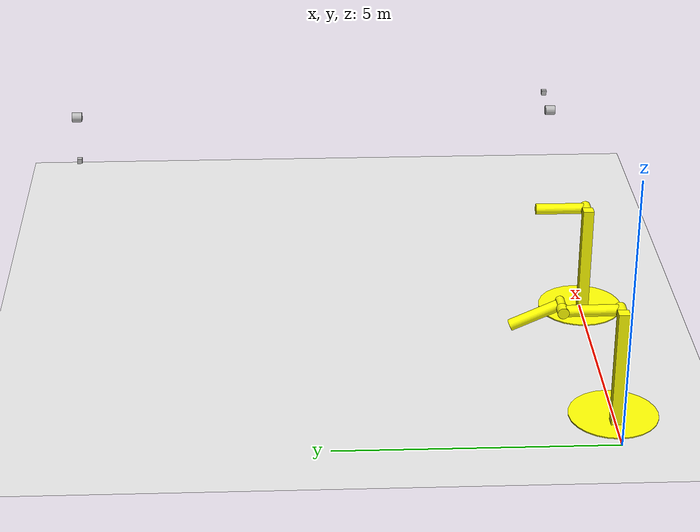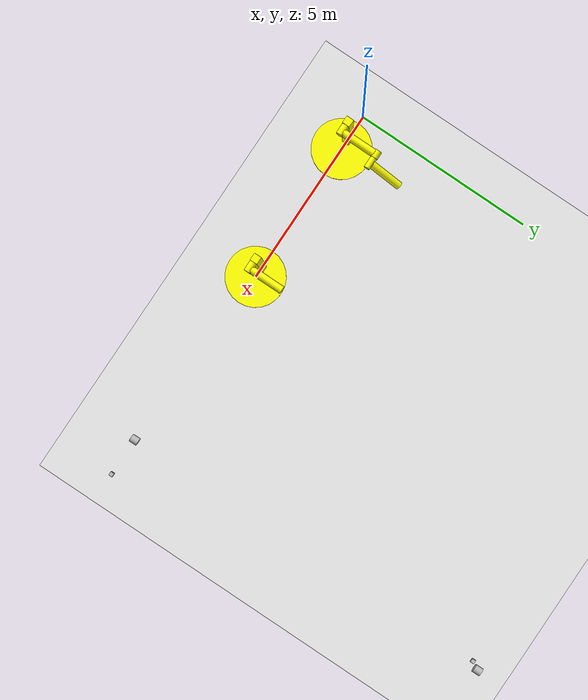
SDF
<?xml version="1.0" ?>
<sdf version="1.6">
  <world name="test_world">
    <model name="ground_plane">
      <static>true</static>
      <link name="link">
        <collision name="collision">
          <geometry>
            <plane>
              <normal>0 0 1</normal>
              <size>100 100</size>
            </plane>
          </geometry>
          <surface>
            <friction>
              <ode>
                <mu>100</mu>
                <mu2>50</mu2>
              </ode>
            </friction>
          </surface>
        </collision>
        <visual name="visual">
          <cast_shadows>false</cast_shadows>
          <geometry>
            <plane>
              <normal>0 0 1</normal>
              <size>100 100</size>
            </plane>
          </geometry>
          <material>
            <ambient>0.9 0.9 0.9 1</ambient>
          </material>
        </visual>
      </link>
    </model>
    <model name="double_pendulum_with_base">
      <pose>1 0 0 0 0 0</pose>
      <link name="base">
        <inertial>
          <mass>100</mass>
        </inertial>
        <visual name="vis_plate_on_ground">
          <pose>0 0 0.01 0 0 0</pose>
          <geometry>
            <cylinder>
              <radius>0.8</radius>
              <length>0.02</length>
            </cylinder>
          </geometry>
          <material>
            <ambient>1 1 0 1</ambient>
          </material>
        </visual>
        <visual name="vis_pole">
          <pose>-0.275 0 1.1 0 0 0</pose>
          <geometry>
            <box>
              <size>0.2 0.2 2.2</size>
            </box>
          </geometry>
          <material>
            <ambient>1 1 0 1</ambient>
          </material>
        </visual>
        <collision name="col_plate_on_ground">
          <pose>0 0 0.01 0 0 0</pose>
          <geometry>
            <cylinder>
              <radius>0.8</radius>
              <length>0.02</length>
            </cylinder>
          </geometry>
        </collision>
        <collision name="col_pole">
          <pose>-0.275 0 1.1 0 0 0</pose>
          <geometry>
            <box>
              <size>0.2 0.2 2.2</size>
            </box>
          </geometry>
          <surface>
            <friction>
              <ode>
                <mu>1.1</mu>
              </ode>
            </friction>
          </surface>
        </collision>
      </link>
      <!-- upper link, length 1, IC -90 degrees -->
      <link name="upper_link">
        <pose>0 0 2.1 -1.5708 0 0</pose>
        <self_collide>0</self_collide>
        <inertial>
          <pose>0 0 0.5 0 0 0</pose>
        </inertial>
        <visual name="vis_upper_joint">
          <pose>-0.05 0 0 0 1.5708 0</pose>
          <geometry>
            <cylinder>
              <radius>0.1</radius>
              <length>0.3</length>
            </cylinder>
          </geometry>
          <material>
            <ambient>1 1 0 1</ambient>
          </material>
        </visual>
        <visual name="vis_lower_joint">
          <pose>0 0 1.0 0 1.5708 0</pose>
          <geometry>
            <cylinder>
              <radius>0.1</radius>
              <length>0.2</length>
            </cylinder>
          </geometry>
          <material>
            <ambient>1 1 0 1</ambient>
          </material>
        </visual>
        <visual name="vis_cylinder">
          <pose>0 0 0.5 0 0 0</pose>
          <geometry>
            <cylinder>
              <radius>0.1</radius>
              <length>0.9</length>
            </cylinder>
          </geometry>
          <material>
            <ambient>1 1 0 1</ambient>
          </material>
        </visual>
        <collision name="col_upper_joint">
          <pose>-0.05 0 0 0 1.5708 0</pose>
          <geometry>
            <cylinder>
              <radius>0.1</radius>
              <length>0.3</length>
            </cylinder>
          </geometry>
          <surface>
            <friction>
              <ode>
                <mu>0.1</mu>
              </ode>
            </friction>
          </surface>
        </collision>
        <collision name="col_lower_joint">
          <pose>0 0 1.0 0 1.5708 0</pose>
          <geometry>
            <cylinder>
              <radius>0.1</radius>
              <length>0.2</length>
            </cylinder>
          </geometry>
        </collision>
        <collision name="col_cylinder">
          <pose>0 0 0.5 0 0 0</pose>
          <geometry>
            <cylinder>
              <radius>0.1</radius>
              <length>0.9</length>
            </cylinder>
          </geometry>
        </collision>
      </link>
      <!-- lower link, length 1, IC ~-120 degrees more -->
      <link name="lower_link">
        <pose>0.25 1.0 2.1 -2 0 0</pose>
        <self_collide>0</self_collide>
        <inertial>
          <pose>0 0 0.5 0 0 0</pose>
        </inertial>
        <visual name="vis_lower_joint">
          <pose>0 0 0 0 1.5708 0</pose>
          <geometry>
            <cylinder>
              <radius>0.08</radius>
              <length>0.3</length>
            </cylinder>
          </geometry>
          <material>
            <ambient>1 1 0 1</ambient>
          </material>
        </visual>
        <visual name="vis_cylinder">
          <pose>0 0 0.5 0 0 0</pose>
          <geometry>
            <cylinder>
              <radius>0.1</radius>
              <length>0.9</length>
            </cylinder>
          </geometry>
          <material>
            <ambient>1 1 0 1</ambient>
          </material>
        </visual>
        <collision name="col_lower_joint">
          <pose>0 0 0 0 1.5708 0</pose>
          <geometry>
            <cylinder>
              <radius>0.08</radius>
              <length>0.3</length>
            </cylinder>
          </geometry>
        </collision>
        <collision name="col_cylinder">
          <pose>0 0 0.5 0 0 0</pose>
          <geometry>
            <cylinder>
              <radius>0.1</radius>
              <length>0.9</length>
            </cylinder>
          </geometry>
        </collision>
      </link>
      <!-- pin joint for upper link, at origin of upper link -->
      <joint name="upper_joint" type="revolute">
        <parent>base</parent>
        <child>upper_link</child>
        <axis>
          <xyz>1.0 0 0</xyz>
          <dynamics>
            <damping>3.0</damping>
          </dynamics>
        </axis>
      </joint>
      <!-- pin joint for lower link, at origin of child link -->
      <joint name="lower_joint" type="revolute">
        <parent>upper_link</parent>
        <child>lower_link</child>
        <axis>
          <xyz>1.0 0 0</xyz>
          <dynamics>
            <damping>3.0</damping>
          </dynamics>
        </axis>
      </joint>
    </model>

    <model name="free_body">
      <pose>0.0  10.0  10.0  0.0  0.0  0.0</pose>
      <link name="link">
        <pose>0.0  0.0  0.0  0.0  0.0  0.0</pose>
        <collision name="collision1">
          <geometry>
            <sphere>
              <radius>1.0</radius>
            </sphere>
          </geometry>
          <surface>
            <bounce>
              <restitution_coefficient>0.8</restitution_coefficient>
            </bounce>
          </surface>
        </collision>
      </link>
    </model>

    <model name="joint_limit_test">
      <pose>10 0 2 0  0 0</pose>
      <link name="base">
        <inertial>
          <mass>100</mass>
        </inertial>
        <visual name="visual">
          <pose>0 0 0 -1.57 0 0</pose>
          <geometry>
            <cylinder>
              <radius>0.1</radius>
              <length>0.2</length>
            </cylinder>
          </geometry>
        </visual>
      </link>
      <link name="bar">
        <pose>1 0 0 0 0 0</pose>
        <inertial>
          <mass>1</mass>
        </inertial>
        <visual name="visual">
          <geometry>
            <box>
              <size>0.1 0.1 0.1</size>
            </box>
        </geometry>
        </visual>
      </link>
      <joint name="j0" type="fixed">
        <parent>world</parent>
        <child>base</child>
      </joint>
      <joint name="j1" type="revolute">
        <pose>-1 0 0 0 0 0</pose>
        <parent>base</parent>
        <child>bar</child>
        <axis>
          <xyz>0 1 0</xyz>
          <limit>
            <lower>-0.5</lower>
            <upper>0.5</upper>
            <effort>100</effort>
          </limit>
        </axis>
      </joint>
    </model>

    <model name="simple_joint_test">
      <pose>10 10 2 0  0 0</pose>
      <link name="base">
        <inertial>
          <mass>100</mass>
        </inertial>
        <visual name="visual">
          <pose>0 0 0 -1.57 0 0</pose>
          <geometry>
            <cylinder>
              <radius>0.1</radius>
              <length>0.2</length>
            </cylinder>
          </geometry>
        </visual>
      </link>
      <link name="bar">
        <pose>0 0 -1 0 0 0</pose>
        <inertial>
          <mass>1</mass>
        </inertial>
        <visual name="visual">
          <geometry>
            <box>
              <size>0.1 0.1 0.1</size>
            </box>
          </geometry>
        </visual>
      </link>
      <joint name="j0" type="fixed">
        <parent>world</parent>
        <child>base</child>
      </joint>
      <joint name="j1" type="revolute">
        <pose>0 0 1 0 0 0</pose>
        <parent>base</parent>
        <child>bar</child>
        <axis>
          <xyz>0 1 0</xyz>
        </axis>
      </joint>
    </model>
    <model name="screw_joint_test">
      <link name="link0"/>
      <link name="link1"/>
      <joint name="j0" type="screw">
        <parent>link0</parent>
        <child>link1</child>
        <thread_pitch>2</thread_pitch>
      </joint>
    </model>
    <model name="ball_joint_test">
      <link name="link0"/>
      <link name="link1"/>
      <joint name="j0" type="ball">
        <parent>link0</parent>
        <child>link1</child>
        <axis>
          <damping>0.1</damping>
        </axis>
      </joint>
    </model>
    <!-- Remove joint types as they get supported -->
    <model name="unsupported_joint_test">
      <link name="link0"/>
      <link name="link1"/>
      <joint name="j0" type="revolute2">
        <parent>link0</parent>
        <child>link1</child>
      </joint>
      <link name="link2"/>
      <link name="link3"/>
      <joint name="j1" type="gearbox">
        <parent>link2</parent>
        <child>link3</child>
      </joint>
      <link name="link4"/>
      <link name="link5"/>
      <joint name="j2" type="continuous">
        <parent>link4</parent>
        <child>link5</child>
      </joint>
    </model>

    <model name="pendulum_with_base">
      <pose>5 0 0 0 0 0</pose>
      <link name="base">
        <inertial>
          <mass>100</mass>
        </inertial>
        <visual name="vis_plate_on_ground">
          <pose>0 0 0.01 0 0 0</pose>
          <geometry>
            <cylinder>
              <radius>0.8</radius>
              <length>0.02</length>
            </cylinder>
          </geometry>
          <material>
            <ambient>1 1 0 1</ambient>
          </material>
        </visual>
        <visual name="vis_pole">
          <pose>-0.275 0 1.1 0 0 0</pose>
          <geometry>
            <box>
              <size>0.2 0.2 2.2</size>
            </box>
          </geometry>
          <material>
            <ambient>1 1 0 1</ambient>
          </material>
        </visual>
        <collision name="col_plate_on_ground">
          <pose>0 0 0.01 0 0 0</pose>
          <geometry>
            <cylinder>
              <radius>0.8</radius>
              <length>0.02</length>
            </cylinder>
          </geometry>
        </collision>
        <collision name="col_pole">
          <pose>-0.275 0 1.1 0 0 0</pose>
          <geometry>
            <box>
              <size>0.2 0.2 2.2</size>
            </box>
          </geometry>
          <surface>
            <friction>
              <ode>
                <mu>1.1</mu>
              </ode>
            </friction>
          </surface>
        </collision>
      </link>
      <!-- upper link, length 1, IC -90 degrees -->
      <link name="upper_link">
        <pose>0 0 2.1 -1.5708 0 0</pose>
        <self_collide>0</self_collide>
        <inertial>
          <pose>0 0 0.5 0 0 0</pose>
        </inertial>
        <visual name="vis_upper_joint">
          <pose>-0.05 0 0 0 1.5708 0</pose>
          <geometry>
            <cylinder>
              <radius>0.1</radius>
              <length>0.3</length>
            </cylinder>
          </geometry>
          <material>
            <ambient>1 1 0 1</ambient>
          </material>
        </visual>

        <visual name="vis_cylinder">
          <pose>0 0 0.5 0 0 0</pose>
          <geometry>
            <cylinder>
              <radius>0.1</radius>
              <length>0.9</length>
            </cylinder>
          </geometry>
          <material>
            <ambient>1 1 0 1</ambient>
          </material>
        </visual>
        <collision name="col_upper_joint">
          <pose>-0.05 0 0 0 1.5708 0</pose>
          <geometry>
            <cylinder>
              <radius>0.1</radius>
              <length>0.3</length>
            </cylinder>
          </geometry>
          <surface>
            <friction>
              <ode>
                <mu>0.1</mu>
              </ode>
            </friction>
          </surface>
        </collision>

        <collision name="col_cylinder">
          <pose>0 0 0.5 0 0 0</pose>
          <geometry>
            <cylinder>
              <radius>0.1</radius>
              <length>0.9</length>
            </cylinder>
          </geometry>
        </collision>
      </link>

      <!-- pin joint for upper link, at origin of upper link -->
      <joint name="upper_joint" type="revolute">
        <parent>base</parent>
        <child>upper_link</child>
        <axis>
          <xyz>1.0 0 0</xyz>
        </axis>
      </joint>

    </model>
  </world>
</sdf>
